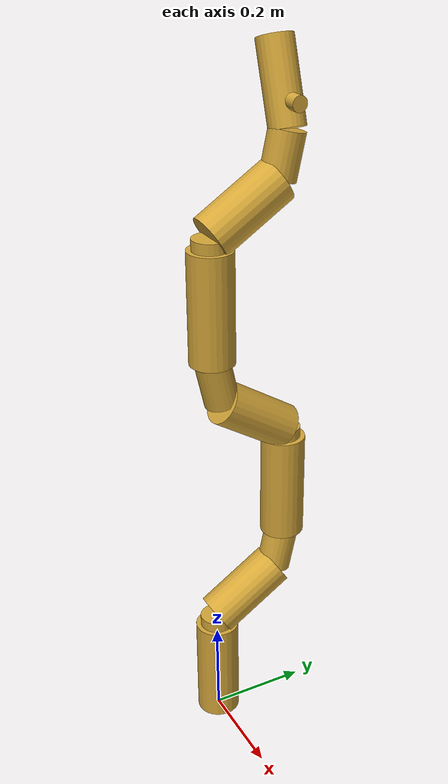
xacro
<?xml version="1.0"?>
<robot xmlns:xacro="http://www.ros.org/wiki/xacro" name="miranda">
    <xacro:arg name="initial_positions_file" default="initial_positions.yaml" />

    <!-- Import miranda urdf file -->
    <xacro:include filename="miranda.urdf" />

    <!-- Import control_xacro -->
    <xacro:include filename="miranda.ros2_control.xacro" />

    <xacro:miranda_ros2_control name="FakeSystem" initial_positions_file="$(arg initial_positions_file)"/>

</robot>

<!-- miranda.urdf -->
<robot name="miranda">
  <!-- Simplified cylinder geometry for visualization. Collision cylinders are approximate and are not validated safety envelopes. -->
  <material name="blue">
    <color rgba="0 0 0.8 1" />
  </material>
  <material name="black">
    <color rgba="0 0 0 1" />
  </material>
  <material name="white">
    <color rgba="1 1 1 1" />
  </material>
  <material name="grey">
    <color rgba="0.5 0.5 0.5 1" />
  </material>
  <material name="red">
    <color rgba="1 0 0 1" />
  </material>
  <material name="green">
    <color rgba="0 1 0 1" />
  </material>
  <material name="yellow">
    <color rgba="1 1 0 1" />
  </material>
  <material name="tree_green">
    <color rgba="0.13 0.54 0.13 1" />
  </material>
  <link name="base_link">
    <inertial>
      <mass value="0.001" />
      <inertia ixx="1.0e-06" ixy="0.0" ixz="0.0" iyy="1.0e-06" iyz="0.0" izz="1.0e-06" />
    </inertial>
  </link>
  <joint name="fixed_J1_A" type="fixed">
    <axis rpy="0 0 0" xyz="0 0 1" />
    <parent link="base_link" />
    <child link="J1_A_stator" />
    <origin rpy="0.0 -0.0 0.0" xyz="0.0 0.0 0.0" />
  </joint>
  <link name="J1_A_stator">
    <visual>
      <origin rpy="0 0 0" xyz="0 0 0.11158" />
      <geometry>
        <cylinder radius="0.045" length="0.22316" />
      </geometry>
      <material name="gold"><color rgba="0.83 0.65 0.22 1" /></material>
    </visual>
    <collision>
      <origin rpy="0 0 0" xyz="0 0 0.11158" />
      <geometry>
        <cylinder radius="0.045" length="0.22316" />
      </geometry>
    </collision>
    <inertial>
      <origin rpy="0 0 0" xyz="0.0 0.0 0.121" />
      <mass value="3.586681" />
      <inertia ixx="0.017808349" ixy="1.6625281e-06" ixz="-1.8023262e-05" iyy="0.017503159" iyz="-6.8557387e-05" izz="0.0068844202" />
    </inertial>
  </link>
  <joint name="yaw_1" type="revolute">
    <parent link="J1_A_stator" />
    <child link="L_1_A" />
    <origin rpy="0.0 -0.0 0.0" xyz="0.0 0.0 0.22316" />
    <limit effort="460.0" lower="-2.75" upper="2.75" velocity="2.14" />
    <axis xyz="0 0 1" />
  </joint>
  <link name="L_1_A">
    <visual>
      <origin rpy="0 0 0" xyz="0 0 0.01092" />
      <geometry>
        <cylinder radius="0.035" length="0.02184" />
      </geometry>
      <material name="gold"><color rgba="0.83 0.65 0.22 1" /></material>
    </visual>
    <collision>
      <origin rpy="0 0 0" xyz="0 0 0.01092" />
      <geometry>
        <cylinder radius="0.035" length="0.02184" />
      </geometry>
    </collision>
    <inertial>
      <origin rpy="0 0 0" xyz="0.0 0.0 0.001875" />
      <mass value="0.57797267" />
      <inertia ixx="0.00098277371" ixy="9.0821713e-08" ixz="-7.1612945e-08" iyy="0.0009834362" iyz="0.0" izz="0.0016259552" />
    </inertial>
  </link>
  <joint name="fixed_J2_A" type="fixed">
    <axis rpy="0 0 0" xyz="0 0 1" />
    <parent link="L_1_A" />
    <child link="J2_A_stator" />
    <origin rpy="0.0 -0.0 0.0" xyz="0.0 0.0 0.02184" />
  </joint>
  <link name="J2_A_stator">
    <visual>
      <origin rpy="0 1.001287973 1.570796327" xyz="0 0.06833 0.04375" />
      <geometry>
        <cylinder radius="0.045" length="0.1622720111" />
      </geometry>
      <material name="gold"><color rgba="0.83 0.65 0.22 1" /></material>
    </visual>
    <collision>
      <origin rpy="0 1.001287973 1.570796327" xyz="0 0.06833 0.04375" />
      <geometry>
        <cylinder radius="0.045" length="0.1622720111" />
      </geometry>
    </collision>
    <inertial>
      <origin rpy="0 0 0" xyz="-0.001149215 0.042825109 0.076804506" />
      <mass value="3.6144181" />
      <inertia ixx="0.015371313" ixy="-9.9563906e-05" ixz="9.0045644e-06" iyy="0.0086766316" iyz="-0.0018673171" izz="0.013320926" />
    </inertial>
  </link>
  <joint name="pitch_1" type="revolute">
    <parent link="J2_A_stator" />
    <child link="L_2_A" />
    <origin rpy="-1.5707963267948966 -0.0 0.0" xyz="0.0 0.13666 0.0875" />
    <limit effort="460.0" lower="-2.75" upper="2.75" velocity="2.14" />
    <axis xyz="0 0 1" />
  </joint>
  <link name="L_2_A">
    <visual>
      <origin rpy="0 1.35152242 -1.570796327" xyz="0 -0.04375 0.00975" />
      <geometry>
        <cylinder radius="0.035" length="0.0896465281" />
      </geometry>
      <material name="gold"><color rgba="0.83 0.65 0.22 1" /></material>
    </visual>
    <collision>
      <origin rpy="0 1.35152242 -1.570796327" xyz="0 -0.04375 0.00975" />
      <geometry>
        <cylinder radius="0.035" length="0.0896465281" />
      </geometry>
    </collision>
    <inertial>
      <origin rpy="0 0 0" xyz="0.0 -0.028238874 0.017527776" />
      <mass value="1.1481338" />
      <inertia ixx="0.0034928397" ixy="-1.0903971e-05" ixz="6.2736548e-06" iyy="0.0029687575" iyz="0.00031199793" izz="0.0042223026" />
    </inertial>
  </link>
  <joint name="fixed_J3_A" type="fixed">
    <axis rpy="0 0 0" xyz="0 0 1" />
    <parent link="L_2_A" />
    <child link="J3_A_stator" />
    <origin rpy="-1.5707963267948966 -0.0 3.141592653589793" xyz="0.0 -0.0875 0.0195" />
  </joint>
  <link name="J3_A_stator">
    <visual>
      <origin rpy="0 0 0" xyz="0 0 0.11158" />
      <geometry>
        <cylinder radius="0.045" length="0.22316" />
      </geometry>
      <material name="gold"><color rgba="0.83 0.65 0.22 1" /></material>
    </visual>
    <collision>
      <origin rpy="0 0 0" xyz="0 0 0.11158" />
      <geometry>
        <cylinder radius="0.045" length="0.22316" />
      </geometry>
    </collision>
    <inertial>
      <origin rpy="0 0 0" xyz="0.0 0.0 0.11767718" />
      <mass value="3.2592751" />
      <inertia ixx="0.017046707" ixy="-2.9108359e-07" ixz="-6.3074987e-06" iyy="0.016747265" iyz="-5.7883896e-05" izz="0.0060549298" />
    </inertial>
  </link>
  <joint name="yaw_2" type="revolute">
    <parent link="J3_A_stator" />
    <child link="L_3_A" />
    <origin rpy="0.0 -0.0 0.0" xyz="0.0 0.0 0.22316" />
    <limit effort="314.0" lower="-2.75" upper="2.75" velocity="2.85" />
    <axis xyz="0 0 1" />
  </joint>
  <link name="L_3_A">
    <visual>
      <origin rpy="0 0 0" xyz="0 0 0.01092" />
      <geometry>
        <cylinder radius="0.035" length="0.02184" />
      </geometry>
      <material name="gold"><color rgba="0.83 0.65 0.22 1" /></material>
    </visual>
    <collision>
      <origin rpy="0 0 0" xyz="0 0 0.01092" />
      <geometry>
        <cylinder radius="0.035" length="0.02184" />
      </geometry>
    </collision>
    <inertial>
      <origin rpy="0 0 0" xyz="0.0 0.0 -0.02" />
      <mass value="0.56725368" />
      <inertia ixx="0.00097738346" ixy="9.078518e-08" ixz="5.0589486e-08" iyy="0.00097804563" iyz="0.0" izz="0.001617678" />
    </inertial>
  </link>
  <joint name="fixed_J4_A" type="fixed">
    <axis rpy="0 0 0" xyz="0 0 1" />
    <parent link="L_3_A" />
    <child link="J4_A_stator" />
    <origin rpy="0.0 -0.0 0.0" xyz="0.0 0.0 0.02184" />
  </joint>
  <link name="J4_A_stator">
    <visual>
      <origin rpy="0 1.001287973 1.570796327" xyz="0 0.06833 0.04375" />
      <geometry>
        <cylinder radius="0.045" length="0.1622720111" />
      </geometry>
      <material name="gold"><color rgba="0.83 0.65 0.22 1" /></material>
    </visual>
    <collision>
      <origin rpy="0 1.001287973 1.570796327" xyz="0 0.06833 0.04375" />
      <geometry>
        <cylinder radius="0.045" length="0.1622720111" />
      </geometry>
    </collision>
    <inertial>
      <origin rpy="0 0 0" xyz="-0.001149215 0.042825109 0.076804506" />
      <mass value="3.6144181" />
      <inertia ixx="0.015371313" ixy="-9.9563906e-05" ixz="9.0045644e-06" iyy="0.0086766316" iyz="-0.0018673171" izz="0.013320926" />
    </inertial>
  </link>
  <joint name="pitch_2" type="revolute">
    <parent link="J4_A_stator" />
    <child link="L_4_A" />
    <origin rpy="-1.5707963267948966 -0.0 0.0" xyz="0.0 0.13666 0.0875" />
    <limit effort="460.0" lower="-2.75" upper="2.75" velocity="2.14" />
    <axis xyz="0 0 1" />
  </joint>
  <link name="L_4_A">
    <visual>
      <origin rpy="0 1.35152242 -1.570796327" xyz="0 -0.04375 0.00975" />
      <geometry>
        <cylinder radius="0.035" length="0.0896465281" />
      </geometry>
      <material name="gold"><color rgba="0.83 0.65 0.22 1" /></material>
    </visual>
    <collision>
      <origin rpy="0 1.35152242 -1.570796327" xyz="0 -0.04375 0.00975" />
      <geometry>
        <cylinder radius="0.035" length="0.0896465281" />
      </geometry>
    </collision>
    <inertial>
      <origin rpy="0 0 0" xyz="0.0 -0.028238874 0.017527776" />
      <mass value="1.1481338" />
      <inertia ixx="0.0034928397" ixy="-1.0903971e-05" ixz="6.2736548e-06" iyy="0.0029687575" iyz="0.00031199793" izz="0.0042223026" />
    </inertial>
  </link>
  <joint name="fixed_J5_A" type="fixed">
    <axis rpy="0 0 0" xyz="0 0 1" />
    <parent link="L_4_A" />
    <child link="J5_A_stator" />
    <origin rpy="-1.5707963267948966 -0.0 3.141592653589793" xyz="0.0 -0.0875 0.0195" />
  </joint>
  <link name="J5_A_stator">
    <visual>
      <origin rpy="0 0 0" xyz="0 0 0.11158" />
      <geometry>
        <cylinder radius="0.045" length="0.22316" />
      </geometry>
      <material name="gold"><color rgba="0.83 0.65 0.22 1" /></material>
    </visual>
    <collision>
      <origin rpy="0 0 0" xyz="0 0 0.11158" />
      <geometry>
        <cylinder radius="0.045" length="0.22316" />
      </geometry>
    </collision>
    <inertial>
      <origin rpy="0 0 0" xyz="0.0 0.0 0.11767718" />
      <mass value="3.2592751" />
      <inertia ixx="0.017046707" ixy="-2.9108359e-07" ixz="-6.3074987e-06" iyy="0.016747265" iyz="-5.7883896e-05" izz="0.0060549298" />
    </inertial>
  </link>
  <joint name="yaw_3" type="revolute">
    <parent link="J5_A_stator" />
    <child link="L_5_A" />
    <origin rpy="0.0 -0.0 0.0" xyz="0.0 0.0 0.22316" />
    <limit effort="314.0" lower="-2.75" upper="2.75" velocity="2.85" />
    <axis xyz="0 0 1" />
  </joint>
  <link name="L_5_A">
    <visual>
      <origin rpy="0 0 0" xyz="0 0 0.01092" />
      <geometry>
        <cylinder radius="0.035" length="0.02184" />
      </geometry>
      <material name="gold"><color rgba="0.83 0.65 0.22 1" /></material>
    </visual>
    <collision>
      <origin rpy="0 0 0" xyz="0 0 0.01092" />
      <geometry>
        <cylinder radius="0.035" length="0.02184" />
      </geometry>
    </collision>
    <inertial>
      <origin rpy="0 0 0" xyz="0.0 0.0 -0.02" />
      <mass value="0.56725368" />
      <inertia ixx="0.00097738346" ixy="9.078518e-08" ixz="5.0589486e-08" iyy="0.00097804563" iyz="0.0" izz="0.001617678" />
    </inertial>
  </link>
  <joint name="fixed_J6_A" type="fixed">
    <axis rpy="0 0 0" xyz="0 0 1" />
    <parent link="L_5_A" />
    <child link="J6_A_stator" />
    <origin rpy="0.0 -0.0 0.0" xyz="0.0 0.0 0.02184" />
  </joint>
  <link name="J6_A_stator">
    <visual>
      <origin rpy="0 1.001287973 1.570796327" xyz="0 0.06833 0.04375" />
      <geometry>
        <cylinder radius="0.045" length="0.1622720111" />
      </geometry>
      <material name="gold"><color rgba="0.83 0.65 0.22 1" /></material>
    </visual>
    <collision>
      <origin rpy="0 1.001287973 1.570796327" xyz="0 0.06833 0.04375" />
      <geometry>
        <cylinder radius="0.045" length="0.1622720111" />
      </geometry>
    </collision>
    <inertial>
      <origin rpy="0 0 0" xyz="-0.0011761517 0.041312534 0.075772157" />
      <mass value="3.3057881" />
      <inertia ixx="0.014381278" ixy="-8.2901107e-05" ixz="2.7564183e-05" iyy="0.0078716547" iyz="-0.0018208015" izz="0.012353539" />
    </inertial>
  </link>
  <joint name="pitch_3" type="revolute">
    <parent link="J6_A_stator" />
    <child link="L_6_A" />
    <origin rpy="-1.5707963267948966 -0.0 0.0" xyz="0.0 0.13666 0.0875" />
    <limit effort="314.0" lower="-2.75" upper="2.75" velocity="2.85" />
    <axis xyz="0 0 1" />
  </joint>
  <link name="L_6_A">
    <visual>
      <origin rpy="0 1.35152242 -1.570796327" xyz="0 -0.04375 0.00975" />
      <geometry>
        <cylinder radius="0.035" length="0.0896465281" />
      </geometry>
      <material name="gold"><color rgba="0.83 0.65 0.22 1" /></material>
    </visual>
    <collision>
      <origin rpy="0 1.35152242 -1.570796327" xyz="0 -0.04375 0.00975" />
      <geometry>
        <cylinder radius="0.035" length="0.0896465281" />
      </geometry>
    </collision>
    <inertial>
      <origin rpy="0 0 0" xyz="0.0 -0.028683616 0.017545874" />
      <mass value="1.1588784" />
      <inertia ixx="0.0034928397" ixy="-1.0903971e-05" ixz="6.2736548e-06" iyy="0.0029687575" iyz="0.00031199793" izz="0.0042223026" />
    </inertial>
  </link>
  <material name="dagana_dark_grey">
    <color rgba="0.2 0.2 0.2 1" />
  </material>
  <material name="dark_grey">
    <color rgba="0.2 0.2 0.2 1" />
  </material>
  <joint name="dagana_A_mount_joint" type="fixed">
    <origin rpy="-1.5707963267948966 1.57 3.141592653589793" xyz="0.0 -0.0875 0.0195" />
    <parent link="L_6_A" />
    <child link="dagana_A_top_link" />
  </joint>
  <link name="dagana_A_top_link">
    <inertial>
      <origin rpy="0 0 0" xyz="-0.0063562154 -0.0060265532000000005  0.060068288000000004" />
      <mass value="1.7432400" />
      <inertia ixx="0.0050510328" ixy="-0.00025264216" ixz="-0.00012103013" iyy="0.0047944612" iyz="-0.00073917704" izz="0.0031156997" />
    </inertial>
    <visual>
      <origin rpy="0 0.3217505544 -1.570796327" xyz="0 -0.025 0.075" />
      <geometry>
        <cylinder radius="0.035" length="0.158113883" />
      </geometry>
      <material name="gold"><color rgba="0.83 0.65 0.22 1" /></material>
    </visual>
    <collision>
      <origin rpy="0 0.3217505544 -1.570796327" xyz="0 -0.025 0.075" />
      <geometry>
        <cylinder radius="0.035" length="0.158113883" />
      </geometry>
    </collision>
  </link>
  <joint name="dagana_A_claw_joint" type="revolute">
    <origin rpy="1.57079632679 0 3.14159265359" xyz="0.0 -0.028 0.05025" />
    <parent link="dagana_A_top_link" />
    <child link="dagana_A_bottom_link" />
    <axis xyz="-1 0 0" />
    <limit effort="1000" lower="0" upper="1.3" velocity="10.0" />
  </joint>
  <link name="dagana_A_bottom_link">
    <inertial>
      <origin rpy="0 0 0" xyz="0 0.069644767 0" />
      <mass value="4.6117745e-01" />
      <inertia ixx="0.0014726990999999999" ixy="7.134683e-05" ixz="2.529065e-06" iyy="0.0009385556899999999" iyz="-0.000264452" izz="0.0019472731" />
    </inertial>
    <visual>
      <origin rpy="0 0 0" xyz="0 0 0.035" />
      <geometry>
        <cylinder radius="0.015" length="0.07" />
      </geometry>
      <material name="gold"><color rgba="0.83 0.65 0.22 1" /></material>
    </visual>
    <collision>
      <origin rpy="0 0 0" xyz="0 0 0.035" />
      <geometry>
        <cylinder radius="0.015" length="0.07" />
      </geometry>
    </collision>
  </link>
  <joint name="dagana_A_tcp_joint" type="fixed">
    <origin rpy="0 0 0" xyz="0 -0.05 0.15" />
    <parent link="dagana_A_top_link" />
    <child link="dagana_A_tcp" />
  </joint>
  <link name="dagana_A_tcp" />
  <gazebo reference="dagana_A_bottom_link">
    <material>Gazebo/DarkGrey</material>
  </gazebo>
  <gazebo reference="dagana_A_top_link">
    <material>Gazebo/DarkGrey</material>
  </gazebo>
  <link name="ee_A" />
  <joint name="fixed_ee_A" type="fixed">
    <axis rpy="0 0 0" xyz="0 0 1" />
    <parent link="dagana_A_tcp" />
    <child link="ee_A" />
    <origin rpy="0.0 0.0 0.0" xyz="0.0 0.05 0.0" />
  </joint>
</robot>
